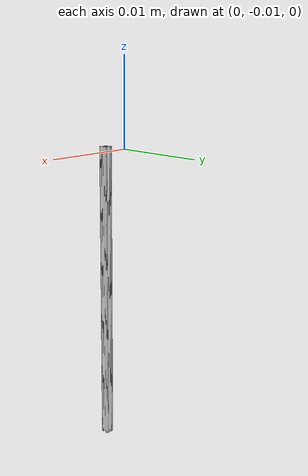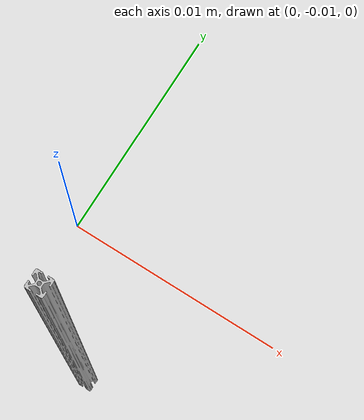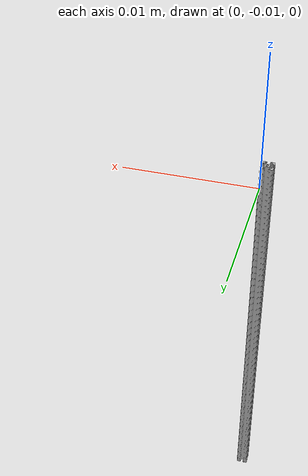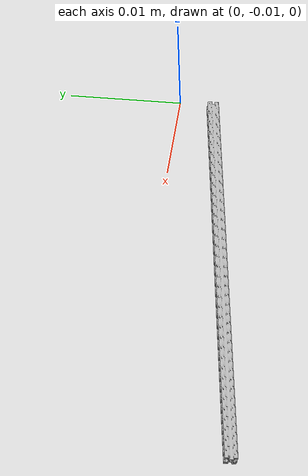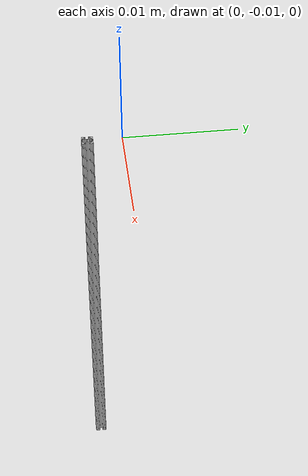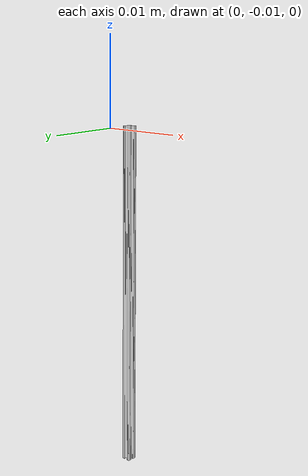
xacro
<?xml version="1.0" ?>
<robot name="Upper" xmlns:xacro="http://www.ros.org/wiki/xacro">

<xacro:include filename="$(find Upper_description)/urdf/materials.xacro" />
<xacro:include filename="$(find Upper_description)/urdf/Upper.trans" />
<xacro:include filename="$(find Upper_description)/urdf/Upper.gazebo" />
<link name="base_link">
  <inertial>
    <origin rpy="0 0 0" xyz="6.213413920694017e-17 -0.3301916779373931 -0.4571999999999985"/>
    <mass value="2.010840356859735"/>
    <inertia ixx="0.140242" ixy="0.0" ixz="-0.0" iyy="0.140242" iyz="-0.0" izz="0.000264"/>
  </inertial>
  <visual>
    <origin rpy="0 0 0" xyz="0 0 0"/>
    <geometry>
      <mesh filename="package://Upper_description/meshes/base_link.stl" scale="0.001 0.001 0.001"/>
    </geometry>
    <material name="silver"/>
  </visual>
  <collision>
    <origin rpy="0 0 0" xyz="0 0 0"/>
    <geometry>
      <mesh filename="package://Upper_description/meshes/base_link.stl" scale="0.001 0.001 0.001"/>
    </geometry>
  </collision>
</link>

</robot>

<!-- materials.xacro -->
<robot name="Upper" xmlns:xacro="http://www.ros.org/wiki/xacro" >

<material name="silver">
  <color rgba="0.700 0.700 0.700 1.000"/>
</material>

</robot>

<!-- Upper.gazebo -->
<robot name="Upper" xmlns:xacro="http://www.ros.org/wiki/xacro" >

<xacro:property name="body_color" value="Gazebo/Silver" />

<gazebo>
  <plugin filename="libgazebo_ros_control.so" name="control"/>
</gazebo>
<gazebo reference="base_link">
  <material>${body_color}</material>
  <mu1>0.2</mu1>
  <mu2>0.2</mu2>
  <selfCollide>true</selfCollide>
  <gravity>true</gravity>
</gazebo>

</robot>
